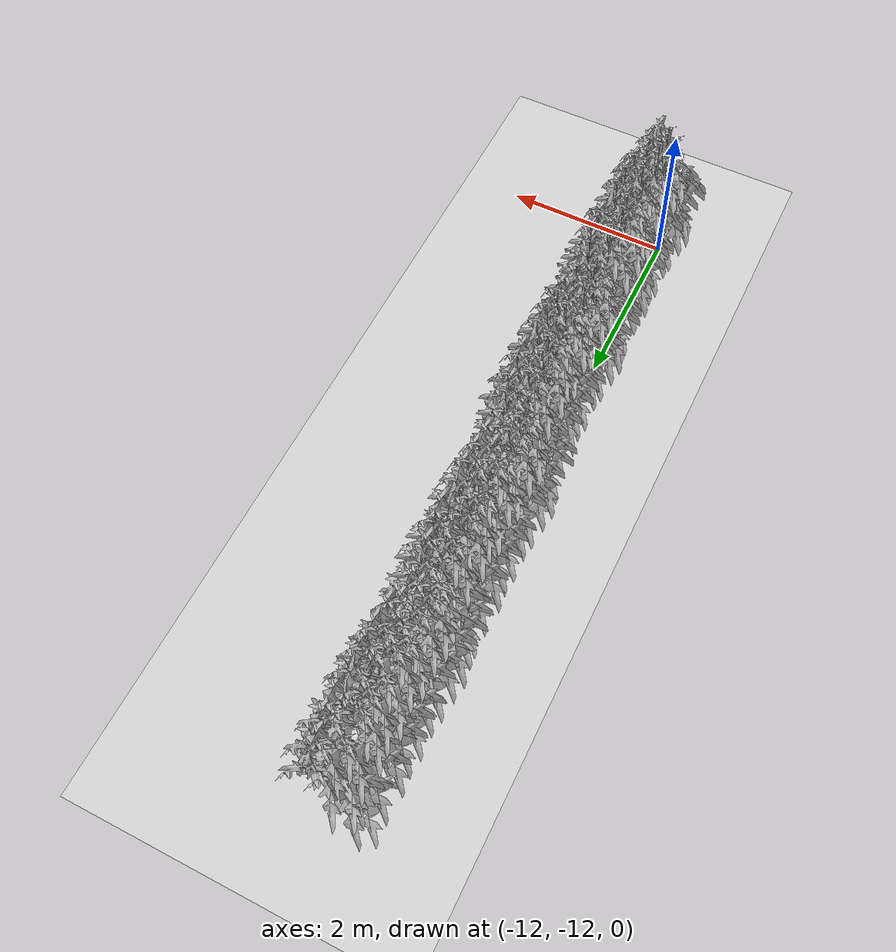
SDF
<sdf version="1.6">
 <world name="default">
  <model name="ground_plane">
   <static>1</static>
   <link name="link">
    <collision name="collision">
     <geometry><plane><normal>0 0 1</normal><size>100 100</size></plane></geometry>
     <surface>
      <contact><collide_bitmask>65535</collide_bitmask></contact>
      <friction><ode><mu>100</mu><mu2>50</mu2></ode></friction>
     </surface>
    </collision>
    <visual name="visual">
     <cast_shadows>0</cast_shadows>
     <geometry><plane><normal>0 0 1</normal><size>100 100</size></plane></geometry>
     <material>
      <script><uri>file://media/materials/scripts/gazebo.material</uri><name>Gazebo/Grey</name></script>
     </material>
    </visual>
   </link>
  </model>
  <model name="MIddle_Plant_3_5">
   <model name="MIddle_Plant_1">
    <model name="tomato_plant_big">
     <static>1</static>
     <link name="link">
      <collision name="collision">
       <pose>0 0 0 1.5708 -0 0</pose>
       <geometry><mesh><scale>0.5 0.6 0.5</scale><uri>model://stick/meshes/stick.dae</uri></mesh></geometry>
      </collision>
      <visual name="visual">
       <geometry>
        <mesh><scale>5e-06 5e-06 7e-06</scale><uri>model://tomato_plant_big/meshes/tomato-plant.dae</uri></mesh>
       </geometry>
      </visual>
     </link>
     <pose>-0.144318 -0.693607 -0 0 -0 0</pose>
    </model>
    <model name="tomato_plant_big_0">
     <static>1</static>
     <link name="link">
      <collision name="collision">
       <pose>0 0 0 1.5708 -0 0</pose>
       <geometry><mesh><scale>0.5 0.6 0.5</scale><uri>model://stick/meshes/stick.dae</uri></mesh></geometry>
      </collision>
      <visual name="visual">
       <geometry>
        <mesh><scale>5e-06 5e-06 7e-06</scale><uri>model://tomato_plant_big/meshes/tomato-plant.dae</uri></mesh>
       </geometry>
      </visual>
     </link>
     <pose>-0.11784 -0.519827 0 0 -0 0</pose>
    </model>
    <model name="tomato_plant_big_1">
     <static>1</static>
     <link name="link">
      <collision name="collision">
       <pose>0 0 0 1.5708 -0 0</pose>
       <geometry><mesh><scale>0.5 0.6 0.5</scale><uri>model://stick/meshes/stick.dae</uri></mesh></geometry>
      </collision>
      <visual name="visual">
       <geometry>
        <mesh><scale>5e-06 5e-06 7e-06</scale><uri>model://tomato_plant_big/meshes/tomato-plant.dae</uri></mesh>
       </geometry>
      </visual>
     </link>
     <pose>0.073755 -0.247584 0 0 -0 0</pose>
    </model>
    <model name="tomato_plant_big_10">
     <static>1</static>
     <link name="link">
      <collision name="collision">
       <pose>0 0 0 1.5708 -0 0</pose>
       <geometry><mesh><scale>0.5 0.6 0.5</scale><uri>model://stick/meshes/stick.dae</uri></mesh></geometry>
      </collision>
      <visual name="visual">
       <geometry>
        <mesh><scale>5e-06 5e-06 7e-06</scale><uri>model://tomato_plant_big/meshes/tomato-plant.dae</uri></mesh>
       </geometry>
      </visual>
     </link>
     <pose>0.037052 1.07094 0 0 -0 0</pose>
    </model>
    <model name="tomato_plant_big_2">
     <static>1</static>
     <link name="link">
      <collision name="collision">
       <pose>0 0 0 1.5708 -0 0</pose>
       <geometry><mesh><scale>0.5 0.6 0.5</scale><uri>model://stick/meshes/stick.dae</uri></mesh></geometry>
      </collision>
      <visual name="visual">
       <geometry>
        <mesh><scale>5e-06 5e-06 7e-06</scale><uri>model://tomato_plant_big/meshes/tomato-plant.dae</uri></mesh>
       </geometry>
      </visual>
     </link>
     <pose>-0.076926 -0.131165 0 0 -0 0</pose>
    </model>
    <model name="tomato_plant_big_3">
     <static>1</static>
     <link name="link">
      <collision name="collision">
       <pose>0 0 0 1.5708 -0 0</pose>
       <geometry><mesh><scale>0.5 0.6 0.5</scale><uri>model://stick/meshes/stick.dae</uri></mesh></geometry>
      </collision>
      <visual name="visual">
       <geometry>
        <mesh><scale>5e-06 5e-06 7e-06</scale><uri>model://tomato_plant_big/meshes/tomato-plant.dae</uri></mesh>
       </geometry>
      </visual>
     </link>
     <pose>0.093714 -0.038386 0 0 -0 0</pose>
    </model>
    <model name="tomato_plant_big_4">
     <static>1</static>
     <link name="link">
      <collision name="collision">
       <pose>0 0 0 1.5708 -0 0</pose>
       <geometry><mesh><scale>0.5 0.6 0.5</scale><uri>model://stick/meshes/stick.dae</uri></mesh></geometry>
      </collision>
      <visual name="visual">
       <geometry>
        <mesh><scale>5e-06 5e-06 7e-06</scale><uri>model://tomato_plant_big/meshes/tomato-plant.dae</uri></mesh>
       </geometry>
      </visual>
     </link>
     <pose>0.103117 0.184356 0 0 -0 0</pose>
    </model>
    <model name="tomato_plant_big_5">
     <static>1</static>
     <link name="link">
      <collision name="collision">
       <pose>0 0 0 1.5708 -0 0</pose>
       <geometry><mesh><scale>0.5 0.6 0.5</scale><uri>model://stick/meshes/stick.dae</uri></mesh></geometry>
      </collision>
      <visual name="visual">
       <geometry>
        <mesh><scale>5e-06 5e-06 7e-06</scale><uri>model://tomato_plant_big/meshes/tomato-plant.dae</uri></mesh>
       </geometry>
      </visual>
     </link>
     <pose>-0.074883 0.301479 0 0 -0 0</pose>
    </model>
    <model name="tomato_plant_big_6">
     <static>1</static>
     <link name="link">
      <collision name="collision">
       <pose>0 0 0 1.5708 -0 0</pose>
       <geometry><mesh><scale>0.5 0.6 0.5</scale><uri>model://stick/meshes/stick.dae</uri></mesh></geometry>
      </collision>
      <visual name="visual">
       <geometry>
        <mesh><scale>5e-06 5e-06 7e-06</scale><uri>model://tomato_plant_big/meshes/tomato-plant.dae</uri></mesh>
       </geometry>
      </visual>
     </link>
     <pose>-0.096921 0.484007 0 0 -0 0</pose>
    </model>
    <model name="tomato_plant_big_7">
     <static>1</static>
     <link name="link">
      <collision name="collision">
       <pose>0 0 0 1.5708 -0 0</pose>
       <geometry><mesh><scale>0.5 0.6 0.5</scale><uri>model://stick/meshes/stick.dae</uri></mesh></geometry>
      </collision>
      <visual name="visual">
       <geometry>
        <mesh><scale>5e-06 5e-06 7e-06</scale><uri>model://tomato_plant_big/meshes/tomato-plant.dae</uri></mesh>
       </geometry>
      </visual>
     </link>
     <pose>0.107491 0.653976 0 0 -0 0</pose>
    </model>
    <model name="tomato_plant_big_8">
     <static>1</static>
     <link name="link">
      <collision name="collision">
       <pose>0 0 0 1.5708 -0 0</pose>
       <geometry><mesh><scale>0.5 0.6 0.5</scale><uri>model://stick/meshes/stick.dae</uri></mesh></geometry>
      </collision>
      <visual name="visual">
       <geometry>
        <mesh><scale>5e-06 5e-06 7e-06</scale><uri>model://tomato_plant_big/meshes/tomato-plant.dae</uri></mesh>
       </geometry>
      </visual>
     </link>
     <pose>-0.07985 0.768549 0 0 -0 0</pose>
    </model>
    <model name="tomato_plant_big_9">
     <static>1</static>
     <link name="link">
      <collision name="collision">
       <pose>0 0 0 1.5708 -0 0</pose>
       <geometry><mesh><scale>0.5 0.6 0.5</scale><uri>model://stick/meshes/stick.dae</uri></mesh></geometry>
      </collision>
      <visual name="visual">
       <geometry>
        <mesh><scale>5e-06 5e-06 7e-06</scale><uri>model://tomato_plant_big/meshes/tomato-plant.dae</uri></mesh>
       </geometry>
      </visual>
     </link>
     <pose>0.098361 0.890852 0 0 -0 0</pose>
    </model>
    <model name="tomato_plant_medium">
     <static>1</static>
     <link name="link">
      <collision name="collision">
       <pose>0 0 0 1.5708 -0 0</pose>
       <geometry><mesh><scale>0.5 0.5 0.5</scale><uri>model://stick/meshes/stick.dae</uri></mesh></geometry>
      </collision>
      <visual name="visual">
       <geometry>
        <mesh><scale>5e-06 5e-06 6e-06</scale><uri>model://tomato_plant_medium/meshes/tomato-plant.dae</uri></mesh>
       </geometry>
      </visual>
     </link>
     <pose>0.056913 -1.05328 0 0 -0 0</pose>
    </model>
    <model name="tomato_plant_medium_0">
     <static>1</static>
     <link name="link">
      <collision name="collision">
       <pose>0 0 0 1.5708 -0 0</pose>
       <geometry><mesh><scale>0.5 0.5 0.5</scale><uri>model://stick/meshes/stick.dae</uri></mesh></geometry>
      </collision>
      <visual name="visual">
       <geometry>
        <mesh><scale>5e-06 5e-06 6e-06</scale><uri>model://tomato_plant_medium/meshes/tomato-plant.dae</uri></mesh>
       </geometry>
      </visual>
     </link>
     <pose>-0.092719 -0.905729 0 0 -0 0</pose>
    </model>
    <model name="tomato_plant_medium_1">
     <static>1</static>
     <link name="link">
      <collision name="collision">
       <pose>0 0 0 1.5708 -0 0</pose>
       <geometry><mesh><scale>0.5 0.5 0.5</scale><uri>model://stick/meshes/stick.dae</uri></mesh></geometry>
      </collision>
      <visual name="visual">
       <geometry>
        <mesh><scale>5e-06 5e-06 6e-06</scale><uri>model://tomato_plant_medium/meshes/tomato-plant.dae</uri></mesh>
       </geometry>
      </visual>
     </link>
     <pose>0.108962 -0.829637 0 0 -0 0</pose>
    </model>
    <model name="tomato_plant_medium_2">
     <static>1</static>
     <link name="link">
      <collision name="collision">
       <pose>0 0 0 1.5708 -0 0</pose>
       <geometry><mesh><scale>0.5 0.5 0.5</scale><uri>model://stick/meshes/stick.dae</uri></mesh></geometry>
      </collision>
      <visual name="visual">
       <geometry>
        <mesh><scale>5e-06 5e-06 6e-06</scale><uri>model://tomato_plant_medium/meshes/tomato-plant.dae</uri></mesh>
       </geometry>
      </visual>
     </link>
     <pose>0.071216 -0.652507 0 0 -0 0</pose>
    </model>
    <model name="tomato_plant_medium_3">
     <static>1</static>
     <link name="link">
      <collision name="collision">
       <pose>0 0 0 1.5708 -0 0</pose>
       <geometry><mesh><scale>0.5 0.5 0.5</scale><uri>model://stick/meshes/stick.dae</uri></mesh></geometry>
      </collision>
      <visual name="visual">
       <geometry>
        <mesh><scale>5e-06 5e-06 6e-06</scale><uri>model://tomato_plant_medium/meshes/tomato-plant.dae</uri></mesh>
       </geometry>
      </visual>
     </link>
     <pose>0.047335 -0.423046 0 0 -0 0</pose>
    </model>
    <model name="tomato_plant_medium_4">
     <static>1</static>
     <link name="link">
      <collision name="collision">
       <pose>0 0 0 1.5708 -0 0</pose>
       <geometry><mesh><scale>0.5 0.5 0.5</scale><uri>model://stick/meshes/stick.dae</uri></mesh></geometry>
      </collision>
      <visual name="visual">
       <geometry>
        <mesh><scale>5e-06 5e-06 6e-06</scale><uri>model://tomato_plant_medium/meshes/tomato-plant.dae</uri></mesh>
       </geometry>
      </visual>
     </link>
     <pose>-0.081012 -0.320324 0 0 -0 0</pose>
    </model>
    <model name="tomato_plant_medium_5">
     <static>1</static>
     <link name="link">
      <collision name="collision">
       <pose>0 0 0 1.5708 -0 0</pose>
       <geometry><mesh><scale>0.5 0.5 0.5</scale><uri>model://stick/meshes/stick.dae</uri></mesh></geometry>
      </collision>
      <visual name="visual">
       <geometry>
        <mesh><scale>5e-06 5e-06 6e-06</scale><uri>model://tomato_plant_medium/meshes/tomato-plant.dae</uri></mesh>
       </geometry>
      </visual>
     </link>
     <pose>-0.07452 0.095988 0 0 -0 0</pose>
    </model>
    <model name="tomato_plant_medium_6">
     <static>1</static>
     <link name="link">
      <collision name="collision">
       <pose>0 0 0 1.5708 -0 0</pose>
       <geometry><mesh><scale>0.5 0.5 0.5</scale><uri>model://stick/meshes/stick.dae</uri></mesh></geometry>
      </collision>
      <visual name="visual">
       <geometry>
        <mesh><scale>5e-06 5e-06 6e-06</scale><uri>model://tomato_plant_medium/meshes/tomato-plant.dae</uri></mesh>
       </geometry>
      </visual>
     </link>
     <pose>0.101424 0.395443 0 0 -0 0</pose>
    </model>
    <model name="tomato_plant_small">
     <static>1</static>
     <link name="link">
      <collision name="collision">
       <pose>0 0 0 1.5708 -0 0</pose>
       <geometry><mesh><scale>0.5 0.45 0.5</scale><uri>model://stick/meshes/stick.dae</uri></mesh></geometry>
      </collision>
      <visual name="visual">
       <geometry>
        <mesh><scale>5e-06 5e-06 5e-06</scale><uri>model://tomato_plant_small/meshes/tomato-plant.dae</uri></mesh>
       </geometry>
      </visual>
     </link>
     <pose>-0.060351 0.969512 0 0 -0 0</pose>
    </model>
    <static>0</static>
    <pose>0.040757 1.77284 0 0 -0 0</pose>
   </model>
   <model name="MIddle_Plant_2">
    <model name="MIddle_Plant_1">
     <model name="tomato_plant_big">
      <static>1</static>
      <link name="link">
       <collision name="collision">
        <pose>0 0 0 1.5708 -0 0</pose>
        <geometry><mesh><scale>0.5 0.6 0.5</scale><uri>model://stick/meshes/stick.dae</uri></mesh></geometry>
       </collision>
       <visual name="visual">
        <geometry>
         <mesh><scale>5e-06 5e-06 7e-06</scale><uri>model://tomato_plant_big/meshes/tomato-plant.dae</uri></mesh>
        </geometry>
       </visual>
      </link>
      <pose>-0.144318 -0.693607 -0 0 -0 0</pose>
     </model>
     <model name="tomato_plant_big_0">
      <static>1</static>
      <link name="link">
       <collision name="collision">
        <pose>0 0 0 1.5708 -0 0</pose>
        <geometry><mesh><scale>0.5 0.6 0.5</scale><uri>model://stick/meshes/stick.dae</uri></mesh></geometry>
       </collision>
       <visual name="visual">
        <geometry>
         <mesh><scale>5e-06 5e-06 7e-06</scale><uri>model://tomato_plant_big/meshes/tomato-plant.dae</uri></mesh>
        </geometry>
       </visual>
      </link>
      <pose>-0.11784 -0.519827 0 0 -0 0</pose>
     </model>
     <model name="tomato_plant_big_1">
      <static>1</static>
      <link name="link">
       <collision name="collision">
        <pose>0 0 0 1.5708 -0 0</pose>
        <geometry><mesh><scale>0.5 0.6 0.5</scale><uri>model://stick/meshes/stick.dae</uri></mesh></geometry>
       </collision>
       <visual name="visual">
        <geometry>
         <mesh><scale>5e-06 5e-06 7e-06</scale><uri>model://tomato_plant_big/meshes/tomato-plant.dae</uri></mesh>
        </geometry>
       </visual>
      </link>
      <pose>0.073755 -0.247584 0 0 -0 0</pose>
     </model>
     <model name="tomato_plant_big_10">
      <static>1</static>
      <link name="link">
       <collision name="collision">
        <pose>0 0 0 1.5708 -0 0</pose>
        <geometry><mesh><scale>0.5 0.6 0.5</scale><uri>model://stick/meshes/stick.dae</uri></mesh></geometry>
       </collision>
       <visual name="visual">
        <geometry>
         <mesh><scale>5e-06 5e-06 7e-06</scale><uri>model://tomato_plant_big/meshes/tomato-plant.dae</uri></mesh>
        </geometry>
       </visual>
      </link>
      <pose>0.037052 1.07094 0 0 -0 0</pose>
     </model>
     <model name="tomato_plant_big_2">
      <static>1</static>
      <link name="link">
       <collision name="collision">
        <pose>0 0 0 1.5708 -0 0</pose>
        <geometry><mesh><scale>0.5 0.6 0.5</scale><uri>model://stick/meshes/stick.dae</uri></mesh></geometry>
       </collision>
       <visual name="visual">
        <geometry>
         <mesh><scale>5e-06 5e-06 7e-06</scale><uri>model://tomato_plant_big/meshes/tomato-plant.dae</uri></mesh>
        </geometry>
       </visual>
      </link>
      <pose>-0.076926 -0.131165 0 0 -0 0</pose>
     </model>
     <model name="tomato_plant_big_3">
      <static>1</static>
      <link name="link">
       <collision name="collision">
        <pose>0 0 0 1.5708 -0 0</pose>
        <geometry><mesh><scale>0.5 0.6 0.5</scale><uri>model://stick/meshes/stick.dae</uri></mesh></geometry>
       </collision>
       <visual name="visual">
        <geometry>
         <mesh><scale>5e-06 5e-06 7e-06</scale><uri>model://tomato_plant_big/meshes/tomato-plant.dae</uri></mesh>
        </geometry>
       </visual>
      </link>
      <pose>0.093714 -0.038386 0 0 -0 0</pose>
     </model>
     <model name="tomato_plant_big_4">
      <static>1</static>
      <link name="link">
       <collision name="collision">
        <pose>0 0 0 1.5708 -0 0</pose>
        <geometry><mesh><scale>0.5 0.6 0.5</scale><uri>model://stick/meshes/stick.dae</uri></mesh></geometry>
       </collision>
       <visual name="visual">
        <geometry>
         <mesh><scale>5e-06 5e-06 7e-06</scale><uri>model://tomato_plant_big/meshes/tomato-plant.dae</uri></mesh>
        </geometry>
       </visual>
      </link>
      <pose>0.103117 0.184356 0 0 -0 0</pose>
     </model>
     <model name="tomato_plant_big_5">
      <static>1</static>
      <link name="link">
       <collision name="collision">
        <pose>0 0 0 1.5708 -0 0</pose>
        <geometry><mesh><scale>0.5 0.6 0.5</scale><uri>model://stick/meshes/stick.dae</uri></mesh></geometry>
       </collision>
       <visual name="visual">
        <geometry>
         <mesh><scale>5e-06 5e-06 7e-06</scale><uri>model://tomato_plant_big/meshes/tomato-plant.dae</uri></mesh>
        </geometry>
       </visual>
      </link>
      <pose>-0.074883 0.301479 0 0 -0 0</pose>
     </model>
     <model name="tomato_plant_big_6">
      <static>1</static>
      <link name="link">
       <collision name="collision">
        <pose>0 0 0 1.5708 -0 0</pose>
        <geometry><mesh><scale>0.5 0.6 0.5</scale><uri>model://stick/meshes/stick.dae</uri></mesh></geometry>
       </collision>
       <visual name="visual">
        <geometry>
         <mesh><scale>5e-06 5e-06 7e-06</scale><uri>model://tomato_plant_big/meshes/tomato-plant.dae</uri></mesh>
        </geometry>
       </visual>
      </link>
      <pose>-0.096921 0.484007 0 0 -0 0</pose>
     </model>
     <model name="tomato_plant_big_7">
      <static>1</static>
      <link name="link">
       <collision name="collision">
        <pose>0 0 0 1.5708 -0 0</pose>
        <geometry><mesh><scale>0.5 0.6 0.5</scale><uri>model://stick/meshes/stick.dae</uri></mesh></geometry>
       </collision>
       <visual name="visual">
        <geometry>
         <mesh><scale>5e-06 5e-06 7e-06</scale><uri>model://tomato_plant_big/meshes/tomato-plant.dae</uri></mesh>
        </geometry>
       </visual>
      </link>
      <pose>0.107491 0.653976 0 0 -0 0</pose>
     </model>
     <model name="tomato_plant_big_8">
      <static>1</static>
      <link name="link">
       <collision name="collision">
        <pose>0 0 0 1.5708 -0 0</pose>
        <geometry><mesh><scale>0.5 0.6 0.5</scale><uri>model://stick/meshes/stick.dae</uri></mesh></geometry>
       </collision>
       <visual name="visual">
        <geometry>
         <mesh><scale>5e-06 5e-06 7e-06</scale><uri>model://tomato_plant_big/meshes/tomato-plant.dae</uri></mesh>
        </geometry>
       </visual>
      </link>
      <pose>-0.07985 0.768549 0 0 -0 0</pose>
     </model>
     <model name="tomato_plant_big_9">
      <static>1</static>
      <link name="link">
       <collision name="collision">
        <pose>0 0 0 1.5708 -0 0</pose>
        <geometry><mesh><scale>0.5 0.6 0.5</scale><uri>model://stick/meshes/stick.dae</uri></mesh></geometry>
       </collision>
       <visual name="visual">
        <geometry>
         <mesh><scale>5e-06 5e-06 7e-06</scale><uri>model://tomato_plant_big/meshes/tomato-plant.dae</uri></mesh>
        </geometry>
       </visual>
      </link>
      <pose>0.098361 0.890852 0 0 -0 0</pose>
     </model>
     <model name="tomato_plant_medium">
      <static>1</static>
      <link name="link">
       <collision name="collision">
        <pose>0 0 0 1.5708 -0 0</pose>
        <geometry><mesh><scale>0.5 0.5 0.5</scale><uri>model://stick/meshes/stick.dae</uri></mesh></geometry>
       </collision>
       <visual name="visual">
        <geometry>
         <mesh><scale>5e-06 5e-06 6e-06</scale><uri>model://tomato_plant_medium/meshes/tomato-plant.dae</uri></mesh>
        </geometry>
       </visual>
      </link>
      <pose>0.056913 -1.05328 0 0 -0 0</pose>
     </model>
     <model name="tomato_plant_medium_0">
      <static>1</static>
      <link name="link">
       <collision name="collision">
        <pose>0 0 0 1.5708 -0 0</pose>
        <geometry><mesh><scale>0.5 0.5 0.5</scale><uri>model://stick/meshes/stick.dae</uri></mesh></geometry>
       </collision>
       <visual name="visual">
        <geometry>
         <mesh><scale>5e-06 5e-06 6e-06</scale><uri>model://tomato_plant_medium/meshes/tomato-plant.dae</uri></mesh>
        </geometry>
       </visual>
      </link>
      <pose>-0.092719 -0.905729 0 0 -0 0</pose>
     </model>
     <model name="tomato_plant_medium_1">
      <static>1</static>
      <link name="link">
       <collision name="collision">
        <pose>0 0 0 1.5708 -0 0</pose>
        <geometry><mesh><scale>0.5 0.5 0.5</scale><uri>model://stick/meshes/stick.dae</uri></mesh></geometry>
       </collision>
       <visual name="visual">
        <geometry>
         <mesh><scale>5e-06 5e-06 6e-06</scale><uri>model://tomato_plant_medium/meshes/tomato-plant.dae</uri></mesh>
        </geometry>
       </visual>
      </link>
      <pose>0.108962 -0.829637 0 0 -0 0</pose>
     </model>
     <model name="tomato_plant_medium_2">
      <static>1</static>
      <link name="link">
       <collision name="collision">
        <pose>0 0 0 1.5708 -0 0</pose>
        <geometry><mesh><scale>0.5 0.5 0.5</scale><uri>model://stick/meshes/stick.dae</uri></mesh></geometry>
       </collision>
       <visual name="visual">
        <geometry>
         <mesh><scale>5e-06 5e-06 6e-06</scale><uri>model://tomato_plant_medium/meshes/tomato-plant.dae</uri></mesh>
        </geometry>
       </visual>
      </link>
      <pose>0.071216 -0.652507 0 0 -0 0</pose>
     </model>
     <model name="tomato_plant_medium_3">
      <static>1</static>
      <link name="link">
       <collision name="collision">
        <pose>0 0 0 1.5708 -0 0</pose>
        <geometry><mesh><scale>0.5 0.5 0.5</scale><uri>model://stick/meshes/stick.dae</uri></mesh></geometry>
       </collision>
       <visual name="visual">
        <geometry>
         <mesh><scale>5e-06 5e-06 6e-06</scale><uri>model://tomato_plant_medium/meshes/tomato-plant.dae</uri></mesh>
        </geometry>
       </visual>
      </link>
      <pose>0.047335 -0.423046 0 0 -0 0</pose>
     </model>
     <model name="tomato_plant_medium_4">
      <static>1</static>
      <link name="link">
       <collision name="collision">
        <pose>0 0 0 1.5708 -0 0</pose>
        <geometry><mesh><scale>0.5 0.5 0.5</scale><uri>model://stick/meshes/stick.dae</uri></mesh></geometry>
       </collision>
       <visual name="visual">
        <geometry>
         <mesh><scale>5e-06 5e-06 6e-06</scale><uri>model://tomato_plant_medium/meshes/tomato-plant.dae</uri></mesh>
        </geometry>
       </visual>
      </link>
      <pose>-0.081012 -0.320324 0 0 -0 0</pose>
     </model>
     <model name="tomato_plant_medium_5">
      <static>1</static>
      <link name="link">
       <collision name="collision">
        <pose>0 0 0 1.5708 -0 0</pose>
        <geometry><mesh><scale>0.5 0.5 0.5</scale><uri>model://stick/meshes/stick.dae</uri></mesh></geometry>
       </collision>
       <visual name="visual">
        <geometry>
         <mesh><scale>5e-06 5e-06 6e-06</scale><uri>model://tomato_plant_medium/meshes/tomato-plant.dae</uri></mesh>
        </geometry>
       </visual>
      </link>
      <pose>-0.07452 0.095988 0 0 -0 0</pose>
     </model>
     <model name="tomato_plant_medium_6">
      <static>1</static>
      <link name="link">
       <collision name="collision">
        <pose>0 0 0 1.5708 -0 0</pose>
        <geometry><mesh><scale>0.5 0.5 0.5</scale><uri>model://stick/meshes/stick.dae</uri></mesh></geometry>
       </collision>
       <visual name="visual">
        <geometry>
         <mesh><scale>5e-06 5e-06 6e-06</scale><uri>model://tomato_plant_medium/meshes/tomato-plant.dae</uri></mesh>
        </geometry>
       </visual>
      </link>
      <pose>0.101424 0.395443 0 0 -0 0</pose>
     </model>
     <model name="tomato_plant_small">
      <static>1</static>
      <link name="link">
       <collision name="collision">
        <pose>0 0 0 1.5708 -0 0</pose>
        <geometry><mesh><scale>0.5 0.45 0.5</scale><uri>model://stick/meshes/stick.dae</uri></mesh></geometry>
       </collision>
       <visual name="visual">
        <geometry>
         <mesh><scale>5e-06 5e-06 5e-06</scale><uri>model://tomato_plant_small/meshes/tomato-plant.dae</uri></mesh>
        </geometry>
       </visual>
      </link>
      <pose>-0.060351 0.969512 0 0 -0 0</pose>
     </model>
     <static>0</static>
     <pose>0.763113 0.028917 0 0 -0 0</pose>
    </model>
    <model name="tomato_plant_big">
     <static>1</static>
     <link name="link">
      <collision name="collision">
       <pose>0 0 0 1.5708 -0 0</pose>
       <geometry><mesh><scale>0.5 0.6 0.5</scale><uri>model://stick/meshes/stick.dae</uri></mesh></geometry>
      </collision>
      <visual name="visual">
       <geometry>
        <mesh><scale>5e-06 5e-06 7e-06</scale><uri>model://tomato_plant_big/meshes/tomato-plant.dae</uri></mesh>
       </geometry>
      </visual>
     </link>
     <pose>0.613724 -2.69399 -0 0 -0 0</pose>
    </model>
    <model name="tomato_plant_big_0">
     <static>1</static>
     <link name="link">
      <collision name="collision">
       <pose>0 0 0 1.5708 -0 0</pose>
       <geometry><mesh><scale>0.5 0.6 0.5</scale><uri>model://stick/meshes/stick.dae</uri></mesh></geometry>
      </collision>
      <visual name="visual">
       <geometry>
        <mesh><scale>5e-06 5e-06 7e-06</scale><uri>model://tomato_plant_big/meshes/tomato-plant.dae</uri></mesh>
       </geometry>
      </visual>
     </link>
     <pose>0.640202 -2.52021 0 0 -0 0</pose>
    </model>
    <model name="tomato_plant_big_1">
     <static>1</static>
     <link name="link">
      <collision name="collision">
       <pose>0 0 0 1.5708 -0 0</pose>
       <geometry><mesh><scale>0.5 0.6 0.5</scale><uri>model://stick/meshes/stick.dae</uri></mesh></geometry>
      </collision>
      <visual name="visual">
       <geometry>
        <mesh><scale>5e-06 5e-06 7e-06</scale><uri>model://tomato_plant_big/meshes/tomato-plant.dae</uri></mesh>
       </geometry>
      </visual>
     </link>
     <pose>0.831797 -2.24797 0 0 -0 0</pose>
    </model>
    <model name="tomato_plant_big_10">
     <static>1</static>
     <link name="link">
      <collision name="collision">
       <pose>0 0 0 1.5708 -0 0</pose>
       <geometry><mesh><scale>0.5 0.6 0.5</scale><uri>model://stick/meshes/stick.dae</uri></mesh></geometry>
      </collision>
      <visual name="visual">
       <geometry>
        <mesh><scale>5e-06 5e-06 7e-06</scale><uri>model://tomato_plant_big/meshes/tomato-plant.dae</uri></mesh>
       </geometry>
      </visual>
     </link>
     <pose>0.795094 -0.929446 0 0 -0 0</pose>
    </model>
    <model name="tomato_plant_big_2">
     <static>1</static>
     <link name="link">
      <collision name="collision">
       <pose>0 0 0 1.5708 -0 0</pose>
       <geometry><mesh><scale>0.5 0.6 0.5</scale><uri>model://stick/meshes/stick.dae</uri></mesh></geometry>
      </collision>
      <visual name="visual">
       <geometry>
        <mesh><scale>5e-06 5e-06 7e-06</scale><uri>model://tomato_plant_big/meshes/tomato-plant.dae</uri></mesh>
       </geometry>
      </visual>
     </link>
     <pose>0.681116 -2.13155 0 0 -0 0</pose>
    </model>
    <model name="tomato_plant_big_3">
     <static>1</static>
     <link name="link">
      <collision name="collision">
       <pose>0 0 0 1.5708 -0 0</pose>
       <geometry><mesh><scale>0.5 0.6 0.5</scale><uri>model://stick/meshes/stick.dae</uri></mesh></geometry>
      </collision>
      <visual name="visual">
       <geometry>
        <mesh><scale>5e-06 5e-06 7e-06</scale><uri>model://tomato_plant_big/meshes/tomato-plant.dae</uri></mesh>
       </geometry>
      </visual>
     </link>
     <pose>0.851755 -2.03877 0 0 -0 0</pose>
    </model>
    <model name="tomato_plant_big_4">
     <static>1</static>
     <link name="link">
      <collision name="collision">
       <pose>0 0 0 1.5708 -0 0</pose>
       <geometry><mesh><scale>0.5 0.6 0.5</scale><uri>model://stick/meshes/stick.dae</uri></mesh></geometry>
      </collision>
      <visual name="visual">
       <geometry>
        <mesh><scale>5e-06 5e-06 7e-06</scale><uri>model://tomato_plant_big/meshes/tomato-plant.dae</uri></mesh>
       </geometry>
      </visual>
     </link>
     <pose>0.861158 -1.81603 0 0 -0 0</pose>
    </model>
    <model name="tomato_plant_big_5">
     <static>1</static>
     <link name="link">
      <collision name="collision">
       <pose>0 0 0 1.5708 -0 0</pose>
       <geometry><mesh><scale>0.5 0.6 0.5</scale><uri>model://stick/meshes/stick.dae</uri></mesh></geometry>
      </collision>
      <visual name="visual">
       <geometry>
        <mesh><scale>5e-06 5e-06 7e-06</scale><uri>model://tomato_plant_big/meshes/tomato-plant.dae</uri></mesh>
       </geometry>
      </visual>
     </link>
     <pose>0.683158 -1.69891 0 0 -0 0</pose>
    </model>
    <model name="tomato_plant_big_6">
     <static>1</static>
     <link name="link">
      <collision name="collision">
       <pose>0 0 0 1.5708 -0 0</pose>
       <geometry><mesh><scale>0.5 0.6 0.5</scale><uri>model://stick/meshes/stick.dae</uri></mesh></geometry>
      </collision>
      <visual name="visual">
       <geometry>
        <mesh><scale>5e-06 5e-06 7e-06</scale><uri>model://tomato_plant_big/meshes/tomato-plant.dae</uri></mesh>
       </geometry>
      </visual>
     </link>
     <pose>0.66112 -1.51638 0 0 -0 0</pose>
    </model>
    <model name="tomato_plant_big_7">
     <static>1</static>
     <link name="link">
      <collision name="collision">
       <pose>0 0 0 1.5708 -0 0</pose>
       <geometry><mesh><scale>0.5 0.6 0.5</scale><uri>model://stick/meshes/stick.dae</uri></mesh></geometry>
      </collision>
      <visual name="visual">
       <geometry>
        <mesh><scale>5e-06 5e-06 7e-06</scale><uri>model://tomato_plant_big/meshes/tomato-plant.dae</uri></mesh>
       </geometry>
      </visual>
     </link>
     <pose>0.865532 -1.34641 0 0 -0 0</pose>
    </model>
    <model name="tomato_plant_big_8">
     <static>1</static>
     <link name="link">
      <collision name="collision">
       <pose>0 0 0 1.5708 -0 0</pose>
       <geometry><mesh><scale>0.5 0.6 0.5</scale><uri>model://stick/meshes/stick.dae</uri></mesh></geometry>
      </collision>
      <visual name="visual">
       <geometry>
        <mesh><scale>5e-06 5e-06 7e-06</scale><uri>model://tomato_plant_big/meshes/tomato-plant.dae</uri></mesh>
       </geometry>
      </visual>
     </link>
     <pose>0.678192 -1.23184 0 0 -0 0</pose>
    </model>
    <model name="tomato_plant_big_9">
     <static>1</static>
     <link name="link">
      <collision name="collision">
       <pose>0 0 0 1.5708 -0 0</pose>
       <geometry><mesh><scale>0.5 0.6 0.5</scale><uri>model://stick/meshes/stick.dae</uri></mesh></geometry>
      </collision>
      <visual name="visual">
       <geometry>
        <mesh><scale>5e-06 5e-06 7e-06</scale><uri>model://tomato_plant_big/meshes/tomato-plant.dae</uri></mesh>
       </geometry>
      </visual>
     </link>
     <pose>0.856402 -1.10953 0 0 -0 0</pose>
    </model>
    <model name="tomato_plant_medium">
     <static>1</static>
     <link name="link">
      <collision name="collision">
       <pose>0 0 0 1.5708 -0 0</pose>
       <geometry><mesh><scale>0.5 0.5 0.5</scale><uri>model://stick/meshes/stick.dae</uri></mesh></geometry>
      </collision>
      <visual name="visual">
       <geometry>
        <mesh><scale>5e-06 5e-06 6e-06</scale><uri>model://tomato_plant_medium/meshes/tomato-plant.dae</uri></mesh>
       </geometry>
      </visual>
     </link>
     <pose>0.814955 -3.05367 0 0 -0 0</pose>
    </model>
    <model name="tomato_plant_medium_0">
     <static>1</static>
     <link name="link">
      <collision name="collision">
       <pose>0 0 0 1.5708 -0 0</pose>
       <geometry><mesh><scale>0.5 0.5 0.5</scale><uri>model://stick/meshes/stick.dae</uri></mesh></geometry>
      </collision>
      <visual name="visual">
       <geometry>
        <mesh><scale>5e-06 5e-06 6e-06</scale><uri>model://tomato_plant_medium/meshes/tomato-plant.dae</uri></mesh>
       </geometry>
      </visual>
     </link>
     <pose>0.665322 -2.90611 0 0 -0 0</pose>
    </model>
    <model name="tomato_plant_medium_1">
     <static>1</static>
     <link name="link">
      <collision name="collision">
       <pose>0 0 0 1.5708 -0 0</pose>
       <geometry><mesh><scale>0.5 0.5 0.5</scale><uri>model://stick/meshes/stick.dae</uri></mesh></geometry>
      </collision>
      <visual name="visual">
       <geometry>
        <mesh><scale>5e-06 5e-06 6e-06</scale><uri>model://tomato_plant_medium/meshes/tomato-plant.dae</uri></mesh>
       </geometry>
      </visual>
     </link>
     <pose>0.867004 -2.83002 0 0 -0 0</pose>
    </model>
    <model name="tomato_plant_medium_2">
     <static>1</static>
     <link name="link">
      <collision name="collision">
       <pose>0 0 0 1.5708 -0 0</pose>
       <geometry><mesh><scale>0.5 0.5 0.5</scale><uri>model://stick/meshes/stick.dae</uri></mesh></geometry>
      </collision>
      <visual name="visual">
       <geometry>
        <mesh><scale>5e-06 5e-06 6e-06</scale><uri>model://tomato_plant_medium/meshes/tomato-plant.dae</uri></mesh>
       </geometry>
      </visual>
     </link>
     <pose>0.829257 -2.65289 0 0 -0 0</pose>
    </model>
    <model name="tomato_plant_medium_3">
     <static>1</static>
     <link name="link">
      <collision name="collision">
       <pose>0 0 0 1.5708 -0 0</pose>
       <geometry><mesh><scale>0.5 0.5 0.5</scale><uri>model://stick/meshes/stick.dae</uri></mesh></geometry>
      </collision>
      <visual name="visual">
       <geometry>
        <mesh><scale>5e-06 5e-06 6e-06</scale><uri>model://tomato_plant_medium/meshes/tomato-plant.dae</uri></mesh>
       </geometry>
      </visual>
     </link>
     <pose>0.805376 -2.42343 0 0 -0 0</pose>
    </model>
    <model name="tomato_plant_medium_4">
     <static>1</static>
     <link name="link">
      <collision name="collision">
       <pose>0 0 0 1.5708 -0 0</pose>
       <geometry><mesh><scale>0.5 0.5 0.5</scale><uri>model://stick/meshes/stick.dae</uri></mesh></geometry>
      </collision>
      <visual name="visual">
       <geometry>
        <mesh><scale>5e-06 5e-06 6e-06</scale><uri>model://tomato_plant_medium/meshes/tomato-plant.dae</uri></mesh>
       </geometry>
      </visual>
     </link>
     <pose>0.67703 -2.32071 0 0 -0 0</pose>
    </model>
    <model name="tomato_plant_medium_5">
     <static>1</static>
     <link name="link">
      <collision name="collision">
       <pose>0 0 0 1.5708 -0 0</pose>
       <geometry><mesh><scale>0.5 0.5 0.5</scale><uri>model://stick/meshes/stick.dae</uri></mesh></geometry>
      </collision>
      <visual name="visual">
       <geometry>
        <mesh><scale>5e-06 5e-06 6e-06</scale><uri>model://tomato_plant_medium/meshes/tomato-plant.dae</uri></mesh>
       </geometry>
      </visual>
     </link>
     <pose>0.683522 -1.9044 0 0 -0 0</pose>
    </model>
    <model name="tomato_plant_medium_6">
     <static>1</static>
     <link name="link">
      <collision name="collision">
       <pose>0 0 0 1.5708 -0 0</pose>
       <geometry><mesh><scale>0.5 0.5 0.5</scale><uri>model://stick/meshes/stick.dae</uri></mesh></geometry>
      </collision>
      <visual name="visual">
       <geometry>
        <mesh><scale>5e-06 5e-06 6e-06</scale><uri>model://tomato_plant_medium/meshes/tomato-plant.dae</uri></mesh>
       </geometry>
      </visual>
     </link>
     <pose>0.859466 -1.60494 0 0 -0 0</pose>
    </model>
    <model name="tomato_plant_small">
     <static>1</static>
     <link name="link">
      <collision name="collision">
       <pose>0 0 0 1.5708 -0 0</pose>
       <geometry><mesh><scale>0.5 0.45 0.5</scale><uri>model://stick/meshes/stick.dae</uri></mesh></geometry>
      </collision>
      <visual name="visual">
       <geometry>
        <mesh><scale>5e-06 5e-06 5e-06</scale><uri>model://tomato_plant_small/meshes/tomato-plant.dae</uri></mesh>
       </geometry>
      </visual>
     </link>
     <pose>0.697691 -1.03087 0 0 -0 0</pose>
    </model>
    <static>0</static>
    <pose>-0.78485 5.73439 0 0 -0 0</pose>
   </model>
   <model name="tomato_plant_big">
    <static>1</static>
    <link name="link">
     <collision name="collision">
      <pose>0 0 0 1.5708 -0 0</pose>
      <geometry><mesh><scale>0.5 0.6 0.5</scale><uri>model://stick/meshes/stick.dae</uri></mesh></geometry>
     </collision>
     <visual name="visual">
      <geometry>
       <mesh><scale>5e-06 5e-06 7e-06</scale><uri>model://tomato_plant_big/meshes/tomato-plant.dae</uri></mesh>
      </geometry>
     </visual>
    </link>
    <pose>-0.108632 -0.950068 -0 0 -0 0</pose>
   </model>
   <model name="tomato_plant_big_0">
    <static>1</static>
    <link name="link">
     <collision name="collision">
      <pose>0 0 0 1.5708 -0 0</pose>
      <geometry><mesh><scale>0.5 0.6 0.5</scale><uri>model://stick/meshes/stick.dae</uri></mesh></geometry>
     </collision>
     <visual name="visual">
      <geometry>
       <mesh><scale>5e-06 5e-06 7e-06</scale><uri>model://tomato_plant_big/meshes/tomato-plant.dae</uri></mesh>
      </geometry>
     </visual>
    </link>
    <pose>-0.082154 -0.776288 0 0 -0 0</pose>
   </model>
   <model name="tomato_plant_big_1">
    <static>1</static>
    <link name="link">
     <collision name="collision">
      <pose>0 0 0 1.5708 -0 0</pose>
      <geometry><mesh><scale>0.5 0.6 0.5</scale><uri>model://stick/meshes/stick.dae</uri></mesh></geometry>
     </collision>
     <visual name="visual">
      <geometry>
       <mesh><scale>5e-06 5e-06 7e-06</scale><uri>model://tomato_plant_big/meshes/tomato-plant.dae</uri></mesh>
      </geometry>
     </visual>
    </link>
    <pose>0.109441 -0.504045 0 0 -0 0</pose>
   </model>
   <model name="tomato_plant_big_10">
    <static>1</static>
    <link name="link">
     <collision name="collision">
      <pose>0 0 0 1.5708 -0 0</pose>
      <geometry><mesh><scale>0.5 0.6 0.5</scale><uri>model://stick/meshes/stick.dae</uri></mesh></geometry>
     </collision>
     <visual name="visual">
      <geometry>
       <mesh><scale>5e-06 5e-06 7e-06</scale><uri>model://tomato_plant_big/meshes/tomato-plant.dae</uri></mesh>
      </geometry>
     </visual>
    </link>
    <pose>0.072738 0.814477 0 0 -0 0</pose>
   </model>
   <model name="tomato_plant_big_2">
    <static>1</static>
    <link name="link">
     <collision name="collision">
      <pose>0 0 0 1.5708 -0 0</pose>
      <geometry><mesh><scale>0.5 0.6 0.5</scale><uri>model://stick/meshes/stick.dae</uri></mesh></geometry>
     </collision>
     <visual name="visual">
      <geometry>
       <mesh><scale>5e-06 5e-06 7e-06</scale><uri>model://tomato_plant_big/meshes/tomato-plant.dae</uri></mesh>
      </geometry>
     </visual>
    </link>
    <pose>-0.04124 -0.387626 0 0 -0 0</pose>
   </model>
   <model name="tomato_plant_big_3">
    <static>1</static>
    <link name="link">
     <collision name="collision">
      <pose>0 0 0 1.5708 -0 0</pose>
      <geometry><mesh><scale>0.5 0.6 0.5</scale><uri>model://stick/meshes/stick.dae</uri></mesh></geometry>
     </collision>
     <visual name="visual">
      <geometry>
       <mesh><scale>5e-06 5e-06 7e-06</scale><uri>model://tomato_plant_big/meshes/tomato-plant.dae</uri></mesh>
      </geometry>
     </visual>
    </link>
    <pose>0.129399 -0.294847 0 0 -0 0</pose>
   </model>
   <model name="tomato_plant_big_4">
    <static>1</static>
    <link name="link">
     <collision name="collision">
      <pose>0 0 0 1.5708 -0 0</pose>
      <geometry><mesh><scale>0.5 0.6 0.5</scale><uri>model://stick/meshes/stick.dae</uri></mesh></geometry>
     </collision>
     <visual name="visual">
      <geometry>
       <mesh><scale>5e-06 5e-06 7e-06</scale><uri>model://tomato_plant_big/meshes/tomato-plant.dae</uri></mesh>
      </geometry>
     </visual>
    </link>
    <pose>0.138802 -0.072105 0 0 -0 0</pose>
   </model>
   <model name="tomato_plant_big_5">
    <static>1</static>
    <link name="link">
     <collision name="collision">
      <pose>0 0 0 1.5708 -0 0</pose>
      <geometry><mesh><scale>0.5 0.6 0.5</scale><uri>model://stick/meshes/stick.dae</uri></mesh></geometry>
     </collision>
     <visual name="visual">
      <geometry>
       <mesh><scale>5e-06 5e-06 7e-06</scale><uri>model://tomato_plant_big/meshes/tomato-plant.dae</uri></mesh>
      </geometry>
     </visual>
    </link>
    <pose>-0.039198 0.045018 0 0 -0 0</pose>
   </model>
   <model name="tomato_plant_big_6">
    <static>1</static>
    <link name="link">
     <collision name="collision">
      <pose>0 0 0 1.5708 -0 0</pose>
      <geometry><mesh><scale>0.5 0.6 0.5</scale><uri>model://stick/meshes/stick.dae</uri></mesh></geometry>
     </collision>
     <visual name="visual">
      <geometry>
       <mesh><scale>5e-06 5e-06 7e-06</scale><uri>model://tomato_plant_big/meshes/tomato-plant.dae</uri></mesh>
      </geometry>
     </visual>
    </link>
    <pose>-0.061236 0.227546 0 0 -0 0</pose>
   </model>
   <model name="tomato_plant_big_7">
    <static>1</static>
    <link name="link">
     <collision name="collision">
      <pose>0 0 0 1.5708 -0 0</pose>
      <geometry><mesh><scale>0.5 0.6 0.5</scale><uri>model://stick/meshes/stick.dae</uri></mesh></geometry>
     </collision>
     <visual name="visual">
      <geometry>
       <mesh><scale>5e-06 5e-06 7e-06</scale><uri>model://tomato_plant_big/meshes/tomato-plant.dae</uri></mesh>
      </geometry>
     </visual>
    </link>
    <pose>0.143176 0.397515 0 0 -0 0</pose>
   </model>
   <model name="tomato_plant_big_8">
    <static>1</static>
    <link name="link">
     <collision name="collision">
      <pose>0 0 0 1.5708 -0 0</pose>
      <geometry><mesh><scale>0.5 0.6 0.5</scale><uri>model://stick/meshes/stick.dae</uri></mesh></geometry>
     </collision>
     <visual name="visual">
      <geometry>
       <mesh><scale>5e-06 5e-06 7e-06</scale><uri>model://tomato_plant_big/meshes/tomato-plant.dae</uri></mesh>
      </geometry>
     </visual>
    </link>
    <pose>-0.044164 0.512088 0 0 -0 0</pose>
   </model>
   <model name="tomato_plant_big_9">
    <static>1</static>
    <link name="link">
     <collision name="collision">
      <pose>0 0 0 1.5708 -0 0</pose>
      <geometry><mesh><scale>0.5 0.6 0.5</scale><uri>model://stick/meshes/stick.dae</uri></mesh></geometry>
     </collision>
     <visual name="visual">
      <geometry>
       <mesh><scale>5e-06 5e-06 7e-06</scale><uri>model://tomato_plant_big/meshes/tomato-plant.dae</uri></mesh>
      </geometry>
     </visual>
    </link>
    <pose>0.134046 0.634391 0 0 -0 0</pose>
   </model>
   <model name="tomato_plant_medium">
    <static>1</static>
    <link name="link">
     <collision name="collision">
      <pose>0 0 0 1.5708 -0 0</pose>
      <geometry><mesh><scale>0.5 0.5 0.5</scale><uri>model://stick/meshes/stick.dae</uri></mesh></geometry>
     </collision>
     <visual name="visual">
      <geometry>
       <mesh><scale>5e-06 5e-06 6e-06</scale><uri>model://tomato_plant_medium/meshes/tomato-plant.dae</uri></mesh>
      </geometry>
     </visual>
    </link>
    <pose>0.092599 -1.30974 0 0 -0 0</pose>
   </model>
   <model name="tomato_plant_medium_0">
    <static>1</static>
    <link name="link">
     <collision name="collision">
      <pose>0 0 0 1.5708 -0 0</pose>
      <geometry><mesh><scale>0.5 0.5 0.5</scale><uri>model://stick/meshes/stick.dae</uri></mesh></geometry>
     </collision>
     <visual name="visual">
      <geometry>
       <mesh><scale>5e-06 5e-06 6e-06</scale><uri>model://tomato_plant_medium/meshes/tomato-plant.dae</uri></mesh>
      </geometry>
     </visual>
    </link>
    <pose>-0.057034 -1.16219 0 0 -0 0</pose>
   </model>
   <model name="tomato_plant_medium_1">
    <static>1</static>
    <link name="link">
     <collision name="collision">
      <pose>0 0 0 1.5708 -0 0</pose>
      <geometry><mesh><scale>0.5 0.5 0.5</scale><uri>model://stick/meshes/stick.dae</uri></mesh></geometry>
     </collision>
     <visual name="visual">
      <geometry>
       <mesh><scale>5e-06 5e-06 6e-06</scale><uri>model://tomato_plant_medium/meshes/tomato-plant.dae</uri></mesh>
      </geometry>
     </visual>
    </link>
    <pose>0.144648 -1.0861 0 0 -0 0</pose>
   </model>
   <model name="tomato_plant_medium_2">
    <static>1</static>
    <link name="link">
     <collision name="collision">
      <pose>0 0 0 1.5708 -0 0</pose>
      <geometry><mesh><scale>0.5 0.5 0.5</scale><uri>model://stick/meshes/stick.dae</uri></mesh></geometry>
     </collision>
     <visual name="visual">
      <geometry>
       <mesh><scale>5e-06 5e-06 6e-06</scale><uri>model://tomato_plant_medium/meshes/tomato-plant.dae</uri></mesh>
      </geometry>
     </visual>
    </link>
    <pose>0.106901 -0.908968 0 0 -0 0</pose>
   </model>
   <model name="tomato_plant_medium_3">
    <static>1</static>
    <link name="link">
     <collision name="collision">
      <pose>0 0 0 1.5708 -0 0</pose>
      <geometry><mesh><scale>0.5 0.5 0.5</scale><uri>model://stick/meshes/stick.dae</uri></mesh></geometry>
     </collision>
     <visual name="visual">
      <geometry>
       <mesh><scale>5e-06 5e-06 6e-06</scale><uri>model://tomato_plant_medium/meshes/tomato-plant.dae</uri></mesh>
      </geometry>
     </visual>
    </link>
    <pose>0.08302 -0.679508 0 0 -0 0</pose>
   </model>
   <model name="tomato_plant_medium_4">
    <static>1</static>
    <link name="link">
     <collision name="collision">
      <pose>0 0 0 1.5708 -0 0</pose>
      <geometry><mesh><scale>0.5 0.5 0.5</scale><uri>model://stick/meshes/stick.dae</uri></mesh></geometry>
     </collision>
     <visual name="visual">
      <geometry>
       <mesh><scale>5e-06 5e-06 6e-06</scale><uri>model://tomato_plant_medium/meshes/tomato-plant.dae</uri></mesh>
      </geometry>
     </visual>
    </link>
    <pose>-0.045326 -0.576785 0 0 -0 0</pose>
   </model>
   <model name="tomato_plant_medium_5">
    <static>1</static>
    <link name="link">
     <collision name="collision">
      <pose>0 0 0 1.5708 -0 0</pose>
      <geometry><mesh><scale>0.5 0.5 0.5</scale><uri>model://stick/meshes/stick.dae</uri></mesh></geometry>
     </collision>
     <visual name="visual">
      <geometry>
       <mesh><scale>5e-06 5e-06 6e-06</scale><uri>model://tomato_plant_medium/meshes/tomato-plant.dae</uri></mesh>
      </geometry>
     </visual>
    </link>
    <pose>-0.038834 -0.160473 0 0 -0 0</pose>
   </model>
   <model name="tomato_plant_medium_6">
    <static>1</static>
    <link name="link">
     <collision name="collision">
      <pose>0 0 0 1.5708 -0 0</pose>
      <geometry><mesh><scale>0.5 0.5 0.5</scale><uri>model://stick/meshes/stick.dae</uri></mesh></geometry>
     </collision>
     <visual name="visual">
      <geometry>
       <mesh><scale>5e-06 5e-06 6e-06</scale><uri>model://tomato_plant_medium/meshes/tomato-plant.dae</uri></mesh>
      </geometry>
     </visual>
    </link>
    <pose>0.13711 0.138982 0 0 -0 0</pose>
   </model>
   <model name="tomato_plant_small">
    <static>1</static>
    <link name="link">
     <collision name="collision">
      <pose>0 0 0 1.5708 -0 0</pose>
      <geometry><mesh><scale>0.5 0.45 0.5</scale><uri>model://stick/meshes/stick.dae</uri></mesh></geometry>
     </collision>
     <visual name="visual">
      <geometry>
       <mesh><scale>5e-06 5e-06 5e-06</scale><uri>model://tomato_plant_small/meshes/tomato-plant.dae</uri></mesh>
      </geometry>
     </visual>
    </link>
    <pose>-0.024665 0.713051 0 0 -0 0</pose>
   </model>
   <static>0</static>
   <pose>-11.7998 -11.1532 0 0 -0 0</pose>
  </model>
 </world>
</sdf>
